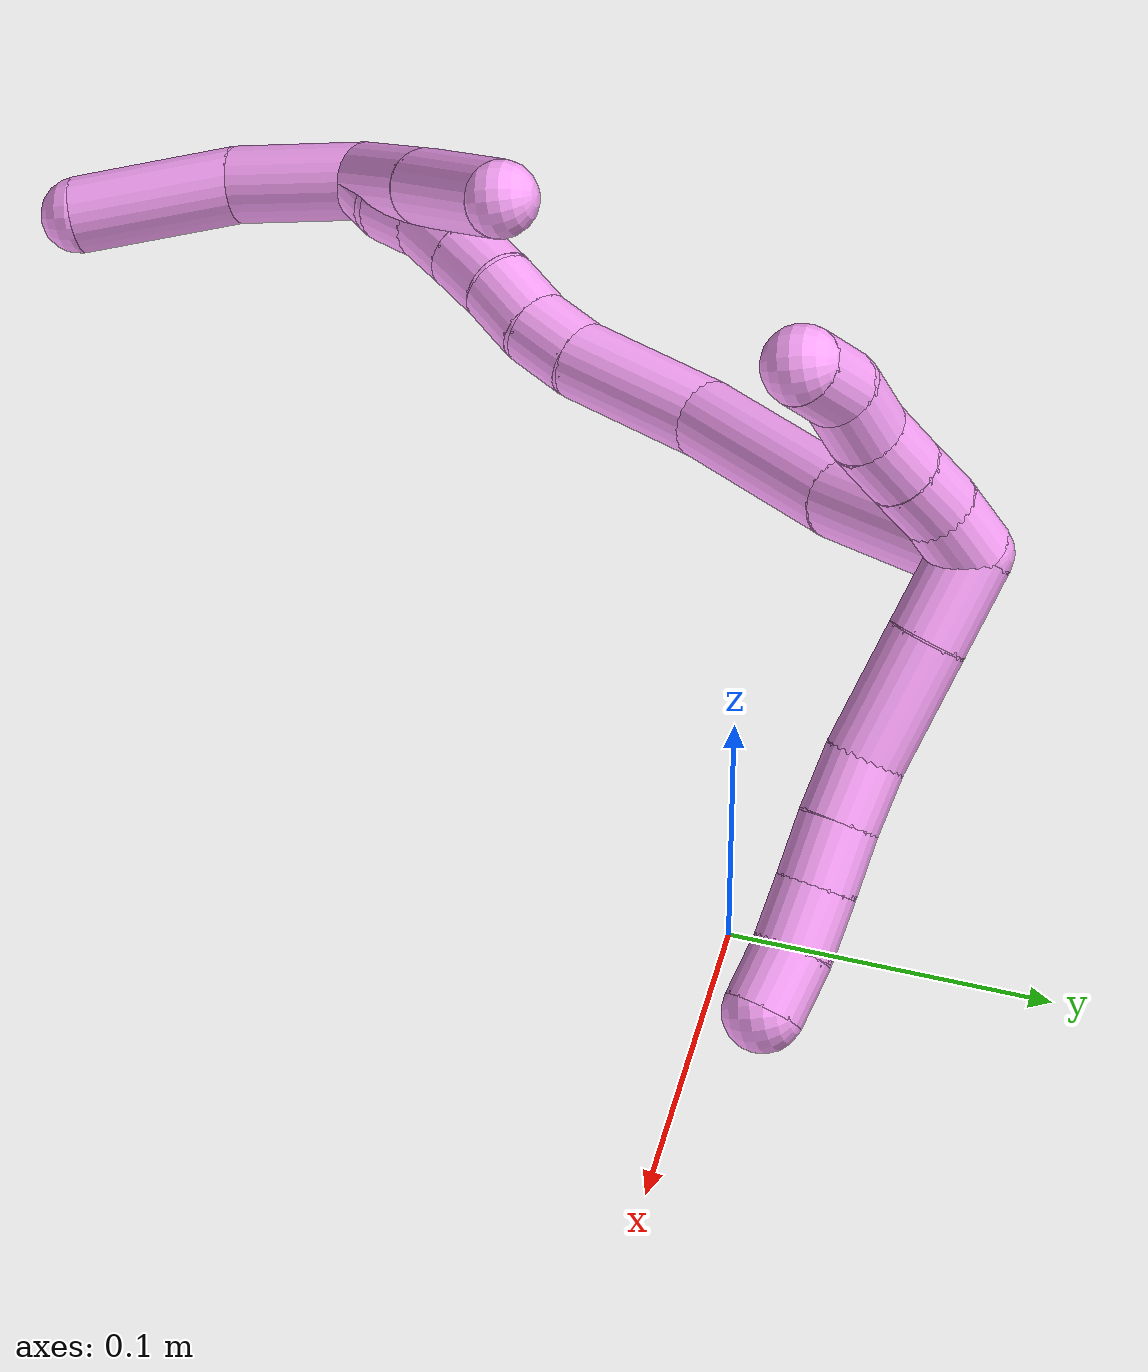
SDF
<sdf version="1.7">
 <world name="default">
  <model name="4">
   <static>0</static>
   <link name="4">
    <collision name="collision-cylinder-e_1_2_8">
     <pose>0.012262 -0.000857 0.007585 0.112512 1.01399 0.062537</pose>
     <geometry><cylinder><radius>0.0125</radius><length>0.028887</length></cylinder></geometry>
     <surface>
      <friction><ode><mu>1.16</mu><mu2>1.16</mu2><slip1>0</slip1><slip2>0</slip2></ode></friction>
      <contact><ode><kp>1e+06</kp><kd>1</kd><max_vel>0</max_vel><min_depth>0.001</min_depth></ode></contact>
     </surface>
    </collision>
    <visual name="visual-cylinder-e_1_2_8">
     <pose>0.012262 -0.000857 0.007585 0.112512 1.01399 0.062537</pose>
     <geometry><cylinder><radius>0.0125</radius><length>0.028887</length></cylinder></geometry>
     <material><ambient>1 0.65098 0.996078 1</ambient></material>
    </visual>
    <collision name="collision-cylinder-e_2_8_9">
     <pose>0.041205 -0.003955 0.025955 0.204913 0.987179 0.110519</pose>
     <geometry><cylinder><radius>0.0125</radius><length>0.039981</length></cylinder></geometry>
     <surface>
      <friction><ode><mu>1.16</mu><mu2>1.16</mu2><slip1>0</slip1><slip2>0</slip2></ode></friction>
      <contact><ode><kp>1e+06</kp><kd>1</kd><max_vel>0</max_vel><min_depth>0.001</min_depth></ode></contact>
     </surface>
    </collision>
    <visual name="visual-cylinder-e_2_8_9">
     <pose>0.041205 -0.003955 0.025955 0.204913 0.987179 0.110519</pose>
     <geometry><cylinder><radius>0.0125</radius><length>0.039981</length></cylinder></geometry>
     <material><ambient>1 0.65098 0.996078 1</ambient></material>
    </visual>
    <collision name="collision-cylinder-e_3_9_10">
     <pose>0.06731 -0.006237 0.041113 0.009203 1.13627 0.005875</pose>
     <geometry><cylinder><radius>0.0125</radius><length>0.020777</length></cylinder></geometry>
     <surface>
      <friction><ode><mu>1.16</mu><mu2>1.16</mu2><slip1>0</slip1><slip2>0</slip2></ode></friction>
      <contact><ode><kp>1e+06</kp><kd>1</kd><max_vel>0</max_vel><min_depth>0.001</min_depth></ode></contact>
     </surface>
    </collision>
    <visual name="visual-cylinder-e_3_9_10">
     <pose>0.06731 -0.006237 0.041113 0.009203 1.13627 0.005875</pose>
     <geometry><cylinder><radius>0.0125</radius><length>0.020777</length></cylinder></geometry>
     <material><ambient>1 0.65098 0.996078 1</ambient></material>
    </visual>
    <collision name="collision-cylinder-e_4_10_11">
     <pose>0.086119 -0.006491 0.049277 0.056241 1.18643 0.037924</pose>
     <geometry><cylinder><radius>0.0125</radius><length>0.020248</length></cylinder></geometry>
     <surface>
      <friction><ode><mu>1.16</mu><mu2>1.16</mu2><slip1>0</slip1><slip2>0</slip2></ode></friction>
      <contact><ode><kp>1e+06</kp><kd>1</kd><max_vel>0</max_vel><min_depth>0.001</min_depth></ode></contact>
     </surface>
    </collision>
    <visual name="visual-cylinder-e_4_10_11">
     <pose>0.086119 -0.006491 0.049277 0.056241 1.18643 0.037924</pose>
     <geometry><cylinder><radius>0.0125</radius><length>0.020248</length></cylinder></geometry>
     <material><ambient>1 0.65098 0.996078 1</ambient></material>
    </visual>
    <collision name="collision-cylinder-e_5_11_12">
     <pose>0.104765 -0.006672 0.056901 -0.008485 1.1783 -0.005671</pose>
     <geometry><cylinder><radius>0.0125</radius><length>0.020046</length></cylinder></geometry>
     <surface>
      <friction><ode><mu>1.16</mu><mu2>1.16</mu2><slip1>0</slip1><slip2>0</slip2></ode></friction>
      <contact><ode><kp>1e+06</kp><kd>1</kd><max_vel>0</max_vel><min_depth>0.001</min_depth></ode></contact>
     </surface>
    </collision>
    <visual name="visual-cylinder-e_5_11_12">
     <pose>0.104765 -0.006672 0.056901 -0.008485 1.1783 -0.005671</pose>
     <geometry><cylinder><radius>0.0125</radius><length>0.020046</length></cylinder></geometry>
     <material><ambient>1 0.65098 0.996078 1</ambient></material>
    </visual>
    <collision name="collision-cylinder-e_6_12_6">
     <pose>0.12298 -0.005493 0.065106 -0.256394 1.10338 -0.158332</pose>
     <geometry><cylinder><radius>0.0125</radius><length>0.02006</length></cylinder></geometry>
     <surface>
      <friction><ode><mu>1.16</mu><mu2>1.16</mu2><slip1>0</slip1><slip2>0</slip2></ode></friction>
      <contact><ode><kp>1e+06</kp><kd>1</kd><max_vel>0</max_vel><min_depth>0.001</min_depth></ode></contact>
     </surface>
    </collision>
    <visual name="visual-cylinder-e_6_12_6">
     <pose>0.12298 -0.005493 0.065106 -0.256394 1.10338 -0.158332</pose>
     <geometry><cylinder><radius>0.0125</radius><length>0.02006</length></cylinder></geometry>
     <material><ambient>1 0.65098 0.996078 1</ambient></material>
    </visual>
    <collision name="collision-cylinder-e_1_2_13">
     <pose>-0.005451 0.007997 0.002519 -1.26564 -0.576483 0.428261</pose>
     <geometry><cylinder><radius>0.0125</radius><length>0.02</length></cylinder></geometry>
     <surface>
      <friction><ode><mu>1.16</mu><mu2>1.16</mu2><slip1>0</slip1><slip2>0</slip2></ode></friction>
      <contact><ode><kp>1e+06</kp><kd>1</kd><max_vel>0</max_vel><min_depth>0.001</min_depth></ode></contact>
     </surface>
    </collision>
    <visual name="visual-cylinder-e_1_2_13">
     <pose>-0.005451 0.007997 0.002519 -1.26564 -0.576483 0.428261</pose>
     <geometry><cylinder><radius>0.0125</radius><length>0.02</length></cylinder></geometry>
     <material><ambient>1 0.65098 0.996078 1</ambient></material>
    </visual>
    <collision name="collision-cylinder-e_2_13_14">
     <pose>-0.014958 0.024749 0.007659 -1.27992 -0.417727 0.313013</pose>
     <geometry><cylinder><radius>0.0125</radius><length>0.02</length></cylinder></geometry>
     <surface>
      <friction><ode><mu>1.16</mu><mu2>1.16</mu2><slip1>0</slip1><slip2>0</slip2></ode></friction>
      <contact><ode><kp>1e+06</kp><kd>1</kd><max_vel>0</max_vel><min_depth>0.001</min_depth></ode></contact>
     </surface>
    </collision>
    <visual name="visual-cylinder-e_2_13_14">
     <pose>-0.014958 0.024749 0.007659 -1.27992 -0.417727 0.313013</pose>
     <geometry><cylinder><radius>0.0125</radius><length>0.02</length></cylinder></geometry>
     <material><ambient>1 0.65098 0.996078 1</ambient></material>
    </visual>
    <collision name="collision-cylinder-e_3_14_15">
     <pose>-0.023323 0.042127 0.012946 -1.27092 -0.445347 0.330934</pose>
     <geometry><cylinder><radius>0.0125</radius><length>0.02</length></cylinder></geometry>
     <surface>
      <friction><ode><mu>1.16</mu><mu2>1.16</mu2><slip1>0</slip1><slip2>0</slip2></ode></friction>
      <contact><ode><kp>1e+06</kp><kd>1</kd><max_vel>0</max_vel><min_depth>0.001</min_depth></ode></contact>
     </surface>
    </collision>
    <visual name="visual-cylinder-e_3_14_15">
     <pose>-0.023323 0.042127 0.012946 -1.27092 -0.445347 0.330934</pose>
     <geometry><cylinder><radius>0.0125</radius><length>0.02</length></cylinder></geometry>
     <material><ambient>1 0.65098 0.996078 1</ambient></material>
    </visual>
    <collision name="collision-cylinder-e_4_15_16">
     <pose>-0.03225 0.059548 0.016725 -1.44498 -0.480155 0.425054</pose>
     <geometry><cylinder><radius>0.0125</radius><length>0.02</length></cylinder></geometry>
     <surface>
      <friction><ode><mu>1.16</mu><mu2>1.16</mu2><slip1>0</slip1><slip2>0</slip2></ode></friction>
      <contact><ode><kp>1e+06</kp><kd>1</kd><max_vel>0</max_vel><min_depth>0.001</min_depth></ode></contact>
     </surface>
    </collision>
    <visual name="visual-cylinder-e_4_15_16">
     <pose>-0.03225 0.059548 0.016725 -1.44498 -0.480155 0.425054</pose>
     <geometry><cylinder><radius>0.0125</radius><length>0.02</length></cylinder></geometry>
     <material><ambient>1 0.65098 0.996078 1</ambient></material>
    </visual>
    <collision name="collision-cylinder-e_5_16_5">
     <pose>-0.038506 0.077887 0.020351 -1.31318 -0.164407 0.126817</pose>
     <geometry><cylinder><radius>0.0125</radius><length>0.02</length></cylinder></geometry>
     <surface>
      <friction><ode><mu>1.16</mu><mu2>1.16</mu2><slip1>0</slip1><slip2>0</slip2></ode></friction>
      <contact><ode><kp>1e+06</kp><kd>1</kd><max_vel>0</max_vel><min_depth>0.001</min_depth></ode></contact>
     </surface>
    </collision>
    <visual name="visual-cylinder-e_5_16_5">
     <pose>-0.038506 0.077887 0.020351 -1.31318 -0.164407 0.126817</pose>
     <geometry><cylinder><radius>0.0125</radius><length>0.02</length></cylinder></geometry>
     <material><ambient>1 0.65098 0.996078 1</ambient></material>
    </visual>
    <collision name="collision-cylinder-e_1_2_17">
     <pose>-0.012979 -0.013239 0.024924 0.488266 -0.43103 -0.108956</pose>
     <geometry><cylinder><radius>0.0125</radius><length>0.062127</length></cylinder></geometry>
     <surface>
      <friction><ode><mu>1.16</mu><mu2>1.16</mu2><slip1>0</slip1><slip2>0</slip2></ode></friction>
      <contact><ode><kp>1e+06</kp><kd>1</kd><max_vel>0</max_vel><min_depth>0.001</min_depth></ode></contact>
     </surface>
    </collision>
    <visual name="visual-cylinder-e_1_2_17">
     <pose>-0.012979 -0.013239 0.024924 0.488266 -0.43103 -0.108956</pose>
     <geometry><cylinder><radius>0.0125</radius><length>0.062127</length></cylinder></geometry>
     <material><ambient>1 0.65098 0.996078 1</ambient></material>
    </visual>
    <collision name="collision-cylinder-e_2_17_18">
     <pose>-0.043242 -0.039378 0.075188 0.470893 -0.546214 -0.134191</pose>
     <geometry><cylinder><radius>0.0125</radius><length>0.066551</length></cylinder></geometry>
     <surface>
      <friction><ode><mu>1.16</mu><mu2>1.16</mu2><slip1>0</slip1><slip2>0</slip2></ode></friction>
      <contact><ode><kp>1e+06</kp><kd>1</kd><max_vel>0</max_vel><min_depth>0.001</min_depth></ode></contact>
     </surface>
    </collision>
    <visual name="visual-cylinder-e_2_17_18">
     <pose>-0.043242 -0.039378 0.075188 0.470893 -0.546214 -0.134191</pose>
     <geometry><cylinder><radius>0.0125</radius><length>0.066551</length></cylinder></geometry>
     <material><ambient>1 0.65098 0.996078 1</ambient></material>
    </visual>
    <collision name="collision-cylinder-e_3_18_19">
     <pose>-0.072605 -0.05594 0.12208 0.168316 -0.504726 -0.043498</pose>
     <geometry><cylinder><radius>0.0125</radius><length>0.049952</length></cylinder></geometry>
     <surface>
      <friction><ode><mu>1.16</mu><mu2>1.16</mu2><slip1>0</slip1><slip2>0</slip2></ode></friction>
      <contact><ode><kp>1e+06</kp><kd>1</kd><max_vel>0</max_vel><min_depth>0.001</min_depth></ode></contact>
     </surface>
    </collision>
    <visual name="visual-cylinder-e_3_18_19">
     <pose>-0.072605 -0.05594 0.12208 0.168316 -0.504726 -0.043498</pose>
     <geometry><cylinder><radius>0.0125</radius><length>0.049952</length></cylinder></geometry>
     <material><ambient>1 0.65098 0.996078 1</ambient></material>
    </visual>
    <collision name="collision-cylinder-e_4_19_20">
     <pose>-0.090891 -0.061041 0.151429 0.18245 -0.664413 -0.063098</pose>
     <geometry><cylinder><radius>0.0125</radius><length>0.02014</length></cylinder></geometry>
     <surface>
      <friction><ode><mu>1.16</mu><mu2>1.16</mu2><slip1>0</slip1><slip2>0</slip2></ode></friction>
      <contact><ode><kp>1e+06</kp><kd>1</kd><max_vel>0</max_vel><min_depth>0.001</min_depth></ode></contact>
     </surface>
    </collision>
    <visual name="visual-cylinder-e_4_19_20">
     <pose>-0.090891 -0.061041 0.151429 0.18245 -0.664413 -0.063098</pose>
     <geometry><cylinder><radius>0.0125</radius><length>0.02014</length></cylinder></geometry>
     <material><ambient>1 0.65098 0.996078 1</ambient></material>
    </visual>
    <collision name="collision-cylinder-e_5_20_21">
     <pose>-0.104773 -0.064442 0.166003 0.281948 -0.82719 -0.124416</pose>
     <geometry><cylinder><radius>0.0125</radius><length>0.020848</length></cylinder></geometry>
     <surface>
      <friction><ode><mu>1.16</mu><mu2>1.16</mu2><slip1>0</slip1><slip2>0</slip2></ode></friction>
      <contact><ode><kp>1e+06</kp><kd>1</kd><max_vel>0</max_vel><min_depth>0.001</min_depth></ode></contact>
     </surface>
    </collision>
    <visual name="visual-cylinder-e_5_20_21">
     <pose>-0.104773 -0.064442 0.166003 0.281948 -0.82719 -0.124416</pose>
     <geometry><cylinder><radius>0.0125</radius><length>0.020848</length></cylinder></geometry>
     <material><ambient>1 0.65098 0.996078 1</ambient></material>
    </visual>
    <collision name="collision-cylinder-e_6_21_22">
     <pose>-0.119158 -0.069427 0.179727 0.410224 -0.725156 -0.157512</pose>
     <geometry><cylinder><radius>0.0125</radius><length>0.020243</length></cylinder></geometry>
     <surface>
      <friction><ode><mu>1.16</mu><mu2>1.16</mu2><slip1>0</slip1><slip2>0</slip2></ode></friction>
      <contact><ode><kp>1e+06</kp><kd>1</kd><max_vel>0</max_vel><min_depth>0.001</min_depth></ode></contact>
     </surface>
    </collision>
    <visual name="visual-cylinder-e_6_21_22">
     <pose>-0.119158 -0.069427 0.179727 0.410224 -0.725156 -0.157512</pose>
     <geometry><cylinder><radius>0.0125</radius><length>0.020243</length></cylinder></geometry>
     <material><ambient>1 0.65098 0.996078 1</ambient></material>
    </visual>
    <collision name="collision-cylinder-e_7_22_23">
     <pose>-0.132375 -0.075535 0.193696 0.414181 -0.703233 -0.153853</pose>
     <geometry><cylinder><radius>0.0125</radius><length>0.020115</length></cylinder></geometry>
     <surface>
      <friction><ode><mu>1.16</mu><mu2>1.16</mu2><slip1>0</slip1><slip2>0</slip2></ode></friction>
      <contact><ode><kp>1e+06</kp><kd>1</kd><max_vel>0</max_vel><min_depth>0.001</min_depth></ode></contact>
     </surface>
    </collision>
    <visual name="visual-cylinder-e_7_22_23">
     <pose>-0.132375 -0.075535 0.193696 0.414181 -0.703233 -0.153853</pose>
     <geometry><cylinder><radius>0.0125</radius><length>0.020115</length></cylinder></geometry>
     <material><ambient>1 0.65098 0.996078 1</ambient></material>
    </visual>
    <collision name="collision-cylinder-e_8_23_24">
     <pose>-0.143524 -0.082338 0.208757 0.433002 -0.483047 -0.108255</pose>
     <geometry><cylinder><radius>0.0125</radius><length>0.02</length></cylinder></geometry>
     <surface>
      <friction><ode><mu>1.16</mu><mu2>1.16</mu2><slip1>0</slip1><slip2>0</slip2></ode></friction>
      <contact><ode><kp>1e+06</kp><kd>1</kd><max_vel>0</max_vel><min_depth>0.001</min_depth></ode></contact>
     </surface>
    </collision>
    <visual name="visual-cylinder-e_8_23_24">
     <pose>-0.143524 -0.082338 0.208757 0.433002 -0.483047 -0.108255</pose>
     <geometry><cylinder><radius>0.0125</radius><length>0.02</length></cylinder></geometry>
     <material><ambient>1 0.65098 0.996078 1</ambient></material>
    </visual>
    <collision name="collision-cylinder-e_9_24_1">
     <pose>-0.153896 -0.09158 0.222871 0.738084 -0.608905 -0.241871</pose>
     <geometry><cylinder><radius>0.0125</radius><length>0.020025</length></cylinder></geometry>
     <surface>
      <friction><ode><mu>1.16</mu><mu2>1.16</mu2><slip1>0</slip1><slip2>0</slip2></ode></friction>
      <contact><ode><kp>1e+06</kp><kd>1</kd><max_vel>0</max_vel><min_depth>0.001</min_depth></ode></contact>
     </surface>
    </collision>
    <visual name="visual-cylinder-e_9_24_1">
     <pose>-0.153896 -0.09158 0.222871 0.738084 -0.608905 -0.241871</pose>
     <geometry><cylinder><radius>0.0125</radius><length>0.020025</length></cylinder></geometry>
     <material><ambient>1 0.65098 0.996078 1</ambient></material>
    </visual>
    <collision name="collision-cylinder-e_1_1_25">
     <pose>-0.16156 -0.098267 0.25174 0.050887 -0.084703 -0.002157</pose>
     <geometry><cylinder><radius>0.0125</radius><length>0.045809</length></cylinder></geometry>
     <surface>
      <friction><ode><mu>1.16</mu><mu2>1.16</mu2><slip1>0</slip1><slip2>0</slip2></ode></friction>
      <contact><ode><kp>1e+06</kp><kd>1</kd><max_vel>0</max_vel><min_depth>0.001</min_depth></ode></contact>
     </surface>
    </collision>
    <visual name="visual-cylinder-e_1_1_25">
     <pose>-0.16156 -0.098267 0.25174 0.050887 -0.084703 -0.002157</pose>
     <geometry><cylinder><radius>0.0125</radius><length>0.045809</length></cylinder></geometry>
     <material><ambient>1 0.65098 0.996078 1</ambient></material>
    </visual>
    <collision name="collision-cylinder-e_2_25_4">
     <pose>-0.160657 -0.097066 0.301375 -0.087775 0.105058 -0.004618</pose>
     <geometry><cylinder><radius>0.0125</radius><length>0.054191</length></cylinder></geometry>
     <surface>
      <friction><ode><mu>1.16</mu><mu2>1.16</mu2><slip1>0</slip1><slip2>0</slip2></ode></friction>
      <contact><ode><kp>1e+06</kp><kd>1</kd><max_vel>0</max_vel><min_depth>0.001</min_depth></ode></contact>
     </surface>
    </collision>
    <visual name="visual-cylinder-e_2_25_4">
     <pose>-0.160657 -0.097066 0.301375 -0.087775 0.105058 -0.004618</pose>
     <geometry><cylinder><radius>0.0125</radius><length>0.054191</length></cylinder></geometry>
     <material><ambient>1 0.65098 0.996078 1</ambient></material>
    </visual>
    <collision name="collision-cylinder-e_1_1_26">
     <pose>-0.153241 -0.081382 0.212947 -2.36489 0.277153 -0.657087</pose>
     <geometry><cylinder><radius>0.0125</radius><length>0.046646</length></cylinder></geometry>
     <surface>
      <friction><ode><mu>1.16</mu><mu2>1.16</mu2><slip1>0</slip1><slip2>0</slip2></ode></friction>
      <contact><ode><kp>1e+06</kp><kd>1</kd><max_vel>0</max_vel><min_depth>0.001</min_depth></ode></contact>
     </surface>
    </collision>
    <visual name="visual-cylinder-e_1_1_26">
     <pose>-0.153241 -0.081382 0.212947 -2.36489 0.277153 -0.657087</pose>
     <geometry><cylinder><radius>0.0125</radius><length>0.046646</length></cylinder></geometry>
     <material><ambient>1 0.65098 0.996078 1</ambient></material>
    </visual>
    <collision name="collision-cylinder-e_2_26_3">
     <pose>-0.139032 -0.048491 0.178088 -2.40312 0.297788 -0.73958</pose>
     <geometry><cylinder><radius>0.0125</radius><length>0.053354</length></cylinder></geometry>
     <surface>
      <friction><ode><mu>1.16</mu><mu2>1.16</mu2><slip1>0</slip1><slip2>0</slip2></ode></friction>
      <contact><ode><kp>1e+06</kp><kd>1</kd><max_vel>0</max_vel><min_depth>0.001</min_depth></ode></contact>
     </surface>
    </collision>
    <visual name="visual-cylinder-e_2_26_3">
     <pose>-0.139032 -0.048491 0.178088 -2.40312 0.297788 -0.73958</pose>
     <geometry><cylinder><radius>0.0125</radius><length>0.053354</length></cylinder></geometry>
     <material><ambient>1 0.65098 0.996078 1</ambient></material>
    </visual>
    <collision name="collision-sphere-3">
     <pose>-0.131205 -0.031324 0.159229 0 -0 0</pose>
     <geometry><sphere><radius>0.0125</radius></sphere></geometry>
     <surface>
      <friction><ode><mu>1.16</mu><mu2>1.16</mu2><slip1>0</slip1><slip2>0</slip2></ode></friction>
      <contact><ode><kp>1e+06</kp><kd>1</kd><max_vel>0</max_vel><min_depth>0.001</min_depth></ode></contact>
     </surface>
    </collision>
    <visual name="visual-sphere-3">
     <pose>-0.131205 -0.031324 0.159229 0 -0 0</pose>
     <geometry><sphere><radius>0.0125</radius></sphere></geometry>
     <material><ambient>1 0.65098 0.996078 1</ambient></material>
    </visual>
    <collision name="collision-sphere-26">
     <pose>-0.146859 -0.065658 0.196947 0 -0 0</pose>
     <geometry><sphere><radius>0.0125</radius></sphere></geometry>
     <surface>
      <friction><ode><mu>1.16</mu><mu2>1.16</mu2><slip1>0</slip1><slip2>0</slip2></ode></friction>
      <contact><ode><kp>1e+06</kp><kd>1</kd><max_vel>0</max_vel><min_depth>0.001</min_depth></ode></contact>
     </surface>
    </collision>
    <visual name="visual-sphere-26">
     <pose>-0.146859 -0.065658 0.196947 0 -0 0</pose>
     <geometry><sphere><radius>0.0125</radius></sphere></geometry>
     <material><ambient>1 0.65098 0.996078 1</ambient></material>
    </visual>
    <collision name="collision-sphere-4">
     <pose>-0.157815 -0.094704 0.328217 0 -0 0</pose>
     <geometry><sphere><radius>0.0125</radius></sphere></geometry>
     <surface>
      <friction><ode><mu>1.16</mu><mu2>1.16</mu2><slip1>0</slip1><slip2>0</slip2></ode></friction>
      <contact><ode><kp>1e+06</kp><kd>1</kd><max_vel>0</max_vel><min_depth>0.001</min_depth></ode></contact>
     </surface>
    </collision>
    <visual name="visual-sphere-4">
     <pose>-0.157815 -0.094704 0.328217 0 -0 0</pose>
     <geometry><sphere><radius>0.0125</radius></sphere></geometry>
     <material><ambient>1 0.65098 0.996078 1</ambient></material>
    </visual>
    <collision name="collision-sphere-25">
     <pose>-0.163498 -0.099428 0.274532 0 -0 0</pose>
     <geometry><sphere><radius>0.0125</radius></sphere></geometry>
     <surface>
      <friction><ode><mu>1.16</mu><mu2>1.16</mu2><slip1>0</slip1><slip2>0</slip2></ode></friction>
      <contact><ode><kp>1e+06</kp><kd>1</kd><max_vel>0</max_vel><min_depth>0.001</min_depth></ode></contact>
     </surface>
    </collision>
    <visual name="visual-sphere-25">
     <pose>-0.163498 -0.099428 0.274532 0 -0 0</pose>
     <geometry><sphere><radius>0.0125</radius></sphere></geometry>
     <material><ambient>1 0.65098 0.996078 1</ambient></material>
    </visual>
    <collision name="collision-sphere-1">
     <pose>-0.159623 -0.097106 0.228947 0 -0 0</pose>
     <geometry><sphere><radius>0.0125</radius></sphere></geometry>
     <surface>
      <friction><ode><mu>1.16</mu><mu2>1.16</mu2><slip1>0</slip1><slip2>0</slip2></ode></friction>
      <contact><ode><kp>1e+06</kp><kd>1</kd><max_vel>0</max_vel><min_depth>0.001</min_depth></ode></contact>
     </surface>
    </collision>
    <visual name="visual-sphere-1">
     <pose>-0.159623 -0.097106 0.228947 0 -0 0</pose>
     <geometry><sphere><radius>0.0125</radius></sphere></geometry>
     <material><ambient>1 0.65098 0.996078 1</ambient></material>
    </visual>
    <collision name="collision-sphere-24">
     <pose>-0.148169 -0.086054 0.216796 0 -0 0</pose>
     <geometry><sphere><radius>0.0125</radius></sphere></geometry>
     <surface>
      <friction><ode><mu>1.16</mu><mu2>1.16</mu2><slip1>0</slip1><slip2>0</slip2></ode></friction>
      <contact><ode><kp>1e+06</kp><kd>1</kd><max_vel>0</max_vel><min_depth>0.001</min_depth></ode></contact>
     </surface>
    </collision>
    <visual name="visual-sphere-24">
     <pose>-0.148169 -0.086054 0.216796 0 -0 0</pose>
     <geometry><sphere><radius>0.0125</radius></sphere></geometry>
     <material><ambient>1 0.65098 0.996078 1</ambient></material>
    </visual>
    <collision name="collision-sphere-23">
     <pose>-0.138879 -0.078622 0.200719 0 -0 0</pose>
     <geometry><sphere><radius>0.0125</radius></sphere></geometry>
     <surface>
      <friction><ode><mu>1.16</mu><mu2>1.16</mu2><slip1>0</slip1><slip2>0</slip2></ode></friction>
      <contact><ode><kp>1e+06</kp><kd>1</kd><max_vel>0</max_vel><min_depth>0.001</min_depth></ode></contact>
     </surface>
    </collision>
    <visual name="visual-sphere-23">
     <pose>-0.138879 -0.078622 0.200719 0 -0 0</pose>
     <geometry><sphere><radius>0.0125</radius></sphere></geometry>
     <material><ambient>1 0.65098 0.996078 1</ambient></material>
    </visual>
    <collision name="collision-sphere-22">
     <pose>-0.125871 -0.072448 0.186673 0 -0 0</pose>
     <geometry><sphere><radius>0.0125</radius></sphere></geometry>
     <surface>
      <friction><ode><mu>1.16</mu><mu2>1.16</mu2><slip1>0</slip1><slip2>0</slip2></ode></friction>
      <contact><ode><kp>1e+06</kp><kd>1</kd><max_vel>0</max_vel><min_depth>0.001</min_depth></ode></contact>
     </surface>
    </collision>
    <visual name="visual-sphere-22">
     <pose>-0.125871 -0.072448 0.186673 0 -0 0</pose>
     <geometry><sphere><radius>0.0125</radius></sphere></geometry>
     <material><ambient>1 0.65098 0.996078 1</ambient></material>
    </visual>
    <collision name="collision-sphere-21">
     <pose>-0.112445 -0.066406 0.17278 0 -0 0</pose>
     <geometry><sphere><radius>0.0125</radius></sphere></geometry>
     <surface>
      <friction><ode><mu>1.16</mu><mu2>1.16</mu2><slip1>0</slip1><slip2>0</slip2></ode></friction>
      <contact><ode><kp>1e+06</kp><kd>1</kd><max_vel>0</max_vel><min_depth>0.001</min_depth></ode></contact>
     </surface>
    </collision>
    <visual name="visual-sphere-21">
     <pose>-0.112445 -0.066406 0.17278 0 -0 0</pose>
     <geometry><sphere><radius>0.0125</radius></sphere></geometry>
     <material><ambient>1 0.65098 0.996078 1</ambient></material>
    </visual>
    <collision name="collision-sphere-12">
     <pose>0.114026 -0.006639 0.060735 0 -0 0</pose>
     <geometry><sphere><radius>0.0125</radius></sphere></geometry>
     <surface>
      <friction><ode><mu>1.16</mu><mu2>1.16</mu2><slip1>0</slip1><slip2>0</slip2></ode></friction>
      <contact><ode><kp>1e+06</kp><kd>1</kd><max_vel>0</max_vel><min_depth>0.001</min_depth></ode></contact>
     </surface>
    </collision>
    <visual name="visual-sphere-12">
     <pose>0.114026 -0.006639 0.060735 0 -0 0</pose>
     <geometry><sphere><radius>0.0125</radius></sphere></geometry>
     <material><ambient>1 0.65098 0.996078 1</ambient></material>
    </visual>
    <collision name="collision-sphere-11">
     <pose>0.095504 -0.006704 0.053067 0 -0 0</pose>
     <geometry><sphere><radius>0.0125</radius></sphere></geometry>
     <surface>
      <friction><ode><mu>1.16</mu><mu2>1.16</mu2><slip1>0</slip1><slip2>0</slip2></ode></friction>
      <contact><ode><kp>1e+06</kp><kd>1</kd><max_vel>0</max_vel><min_depth>0.001</min_depth></ode></contact>
     </surface>
    </collision>
    <visual name="visual-sphere-11">
     <pose>0.095504 -0.006704 0.053067 0 -0 0</pose>
     <geometry><sphere><radius>0.0125</radius></sphere></geometry>
     <material><ambient>1 0.65098 0.996078 1</ambient></material>
    </visual>
    <collision name="collision-sphere-10">
     <pose>0.076733 -0.006277 0.045487 0 -0 0</pose>
     <geometry><sphere><radius>0.0125</radius></sphere></geometry>
     <surface>
      <friction><ode><mu>1.16</mu><mu2>1.16</mu2><slip1>0</slip1><slip2>0</slip2></ode></friction>
      <contact><ode><kp>1e+06</kp><kd>1</kd><max_vel>0</max_vel><min_depth>0.001</min_depth></ode></contact>
     </surface>
    </collision>
    <visual name="visual-sphere-10">
     <pose>0.076733 -0.006277 0.045487 0 -0 0</pose>
     <geometry><sphere><radius>0.0125</radius></sphere></geometry>
     <material><ambient>1 0.65098 0.996078 1</ambient></material>
    </visual>
    <collision name="collision-sphere-9">
     <pose>0.057887 -0.006197 0.03674 0 -0 0</pose>
     <geometry><sphere><radius>0.0125</radius></sphere></geometry>
     <surface>
      <friction><ode><mu>1.16</mu><mu2>1.16</mu2><slip1>0</slip1><slip2>0</slip2></ode></friction>
      <contact><ode><kp>1e+06</kp><kd>1</kd><max_vel>0</max_vel><min_depth>0.001</min_depth></ode></contact>
     </surface>
    </collision>
    <visual name="visual-sphere-9">
     <pose>0.057887 -0.006197 0.03674 0 -0 0</pose>
     <geometry><sphere><radius>0.0125</radius></sphere></geometry>
     <material><ambient>1 0.65098 0.996078 1</ambient></material>
    </visual>
    <collision name="collision-sphere-2">
     <geometry><sphere><radius>0.0125</radius></sphere></geometry>
     <surface>
      <friction><ode><mu>1.16</mu><mu2>1.16</mu2><slip1>0</slip1><slip2>0</slip2></ode></friction>
      <contact><ode><kp>1e+06</kp><kd>1</kd><max_vel>0</max_vel><min_depth>0.001</min_depth></ode></contact>
     </surface>
    </collision>
    <visual name="visual-sphere-2">
     <geometry><sphere><radius>0.0125</radius></sphere></geometry>
     <material><ambient>1 0.65098 0.996078 1</ambient></material>
    </visual>
    <collision name="collision-sphere-19">
     <pose>-0.084682 -0.059602 0.143632 0 -0 0</pose>
     <geometry><sphere><radius>0.0125</radius></sphere></geometry>
     <surface>
      <friction><ode><mu>1.16</mu><mu2>1.16</mu2><slip1>0</slip1><slip2>0</slip2></ode></friction>
      <contact><ode><kp>1e+06</kp><kd>1</kd><max_vel>0</max_vel><min_depth>0.001</min_depth></ode></contact>
     </surface>
    </collision>
    <visual name="visual-sphere-19">
     <pose>-0.084682 -0.059602 0.143632 0 -0 0</pose>
     <geometry><sphere><radius>0.0125</radius></sphere></geometry>
     <material><ambient>1 0.65098 0.996078 1</ambient></material>
    </visual>
    <collision name="collision-sphere-8">
     <pose>0.024523 -0.001714 0.01517 0 -0 0</pose>
     <geometry><sphere><radius>0.0125</radius></sphere></geometry>
     <surface>
      <friction><ode><mu>1.16</mu><mu2>1.16</mu2><slip1>0</slip1><slip2>0</slip2></ode></friction>
      <contact><ode><kp>1e+06</kp><kd>1</kd><max_vel>0</max_vel><min_depth>0.001</min_depth></ode></contact>
     </surface>
    </collision>
    <visual name="visual-sphere-8">
     <pose>0.024523 -0.001714 0.01517 0 -0 0</pose>
     <geometry><sphere><radius>0.0125</radius></sphere></geometry>
     <material><ambient>1 0.65098 0.996078 1</ambient></material>
    </visual>
    <collision name="collision-sphere-6">
     <pose>0.131934 -0.004347 0.069478 0 -0 0</pose>
     <geometry><sphere><radius>0.0125</radius></sphere></geometry>
     <surface>
      <friction><ode><mu>1.16</mu><mu2>1.16</mu2><slip1>0</slip1><slip2>0</slip2></ode></friction>
      <contact><ode><kp>1e+06</kp><kd>1</kd><max_vel>0</max_vel><min_depth>0.001</min_depth></ode></contact>
     </surface>
    </collision>
    <visual name="visual-sphere-6">
     <pose>0.131934 -0.004347 0.069478 0 -0 0</pose>
     <geometry><sphere><radius>0.0125</radius></sphere></geometry>
     <material><ambient>1 0.65098 0.996078 1</ambient></material>
    </visual>
    <collision name="collision-sphere-13">
     <pose>-0.010902 0.015993 0.005038 0 -0 0</pose>
     <geometry><sphere><radius>0.0125</radius></sphere></geometry>
     <surface>
      <friction><ode><mu>1.16</mu><mu2>1.16</mu2><slip1>0</slip1><slip2>0</slip2></ode></friction>
      <contact><ode><kp>1e+06</kp><kd>1</kd><max_vel>0</max_vel><min_depth>0.001</min_depth></ode></contact>
     </surface>
    </collision>
    <visual name="visual-sphere-13">
     <pose>-0.010902 0.015993 0.005038 0 -0 0</pose>
     <geometry><sphere><radius>0.0125</radius></sphere></geometry>
     <material><ambient>1 0.65098 0.996078 1</ambient></material>
    </visual>
    <collision name="collision-sphere-14">
     <pose>-0.019015 0.033505 0.01028 0 -0 0</pose>
     <geometry><sphere><radius>0.0125</radius></sphere></geometry>
     <surface>
      <friction><ode><mu>1.16</mu><mu2>1.16</mu2><slip1>0</slip1><slip2>0</slip2></ode></friction>
      <contact><ode><kp>1e+06</kp><kd>1</kd><max_vel>0</max_vel><min_depth>0.001</min_depth></ode></contact>
     </surface>
    </collision>
    <visual name="visual-sphere-14">
     <pose>-0.019015 0.033505 0.01028 0 -0 0</pose>
     <geometry><sphere><radius>0.0125</radius></sphere></geometry>
     <material><ambient>1 0.65098 0.996078 1</ambient></material>
    </visual>
    <collision name="collision-sphere-15">
     <pose>-0.027631 0.050749 0.015612 0 -0 0</pose>
     <geometry><sphere><radius>0.0125</radius></sphere></geometry>
     <surface>
      <friction><ode><mu>1.16</mu><mu2>1.16</mu2><slip1>0</slip1><slip2>0</slip2></ode></friction>
      <contact><ode><kp>1e+06</kp><kd>1</kd><max_vel>0</max_vel><min_depth>0.001</min_depth></ode></contact>
     </surface>
    </collision>
    <visual name="visual-sphere-15">
     <pose>-0.027631 0.050749 0.015612 0 -0 0</pose>
     <geometry><sphere><radius>0.0125</radius></sphere></geometry>
     <material><ambient>1 0.65098 0.996078 1</ambient></material>
    </visual>
    <collision name="collision-sphere-16">
     <pose>-0.036869 0.068347 0.017838 0 -0 0</pose>
     <geometry><sphere><radius>0.0125</radius></sphere></geometry>
     <surface>
      <friction><ode><mu>1.16</mu><mu2>1.16</mu2><slip1>0</slip1><slip2>0</slip2></ode></friction>
      <contact><ode><kp>1e+06</kp><kd>1</kd><max_vel>0</max_vel><min_depth>0.001</min_depth></ode></contact>
     </surface>
    </collision>
    <visual name="visual-sphere-16">
     <pose>-0.036869 0.068347 0.017838 0 -0 0</pose>
     <geometry><sphere><radius>0.0125</radius></sphere></geometry>
     <material><ambient>1 0.65098 0.996078 1</ambient></material>
    </visual>
    <collision name="collision-sphere-5">
     <pose>-0.040142 0.087427 0.022865 0 -0 0</pose>
     <geometry><sphere><radius>0.0125</radius></sphere></geometry>
     <surface>
      <friction><ode><mu>1.16</mu><mu2>1.16</mu2><slip1>0</slip1><slip2>0</slip2></ode></friction>
      <contact><ode><kp>1e+06</kp><kd>1</kd><max_vel>0</max_vel><min_depth>0.001</min_depth></ode></contact>
     </surface>
    </collision>
    <visual name="visual-sphere-5">
     <pose>-0.040142 0.087427 0.022865 0 -0 0</pose>
     <geometry><sphere><radius>0.0125</radius></sphere></geometry>
     <material><ambient>1 0.65098 0.996078 1</ambient></material>
    </visual>
    <collision name="collision-sphere-17">
     <pose>-0.025957 -0.026478 0.049849 0 -0 0</pose>
     <geometry><sphere><radius>0.0125</radius></sphere></geometry>
     <surface>
      <friction><ode><mu>1.16</mu><mu2>1.16</mu2><slip1>0</slip1><slip2>0</slip2></ode></friction>
      <contact><ode><kp>1e+06</kp><kd>1</kd><max_vel>0</max_vel><min_depth>0.001</min_depth></ode></contact>
     </surface>
    </collision>
    <visual name="visual-sphere-17">
     <pose>-0.025957 -0.026478 0.049849 0 -0 0</pose>
     <geometry><sphere><radius>0.0125</radius></sphere></geometry>
     <material><ambient>1 0.65098 0.996078 1</ambient></material>
    </visual>
    <collision name="collision-sphere-18">
     <pose>-0.060527 -0.052278 0.100527 0 -0 0</pose>
     <geometry><sphere><radius>0.0125</radius></sphere></geometry>
     <surface>
      <friction><ode><mu>1.16</mu><mu2>1.16</mu2><slip1>0</slip1><slip2>0</slip2></ode></friction>
      <contact><ode><kp>1e+06</kp><kd>1</kd><max_vel>0</max_vel><min_depth>0.001</min_depth></ode></contact>
     </surface>
    </collision>
    <visual name="visual-sphere-18">
     <pose>-0.060527 -0.052278 0.100527 0 -0 0</pose>
     <geometry><sphere><radius>0.0125</radius></sphere></geometry>
     <material><ambient>1 0.65098 0.996078 1</ambient></material>
    </visual>
    <collision name="collision-sphere-20">
     <pose>-0.097101 -0.062479 0.159225 0 -0 0</pose>
     <geometry><sphere><radius>0.0125</radius></sphere></geometry>
     <surface>
      <friction><ode><mu>1.16</mu><mu2>1.16</mu2><slip1>0</slip1><slip2>0</slip2></ode></friction>
      <contact><ode><kp>1e+06</kp><kd>1</kd><max_vel>0</max_vel><min_depth>0.001</min_depth></ode></contact>
     </surface>
    </collision>
    <visual name="visual-sphere-20">
     <pose>-0.097101 -0.062479 0.159225 0 -0 0</pose>
     <geometry><sphere><radius>0.0125</radius></sphere></geometry>
     <material><ambient>1 0.65098 0.996078 1</ambient></material>
    </visual>
    <inertial>
     <pose>-0.060806 -0.03707 0.119189 0 -0 0</pose>
     <mass>0.75</mass>
     <inertia><ixx>9.5e-05</ixx><ixy>0</ixy><ixz>0</ixz><iyy>8.3e-05</iyy><iyz>0</iyz><izz>4.5e-05</izz></inertia>
    </inertial>
   </link>
   <pose>-0.070071 0.054775 0.114907 1.93148 0.500679 0.275308</pose>
  </model>
 </world>
</sdf>
